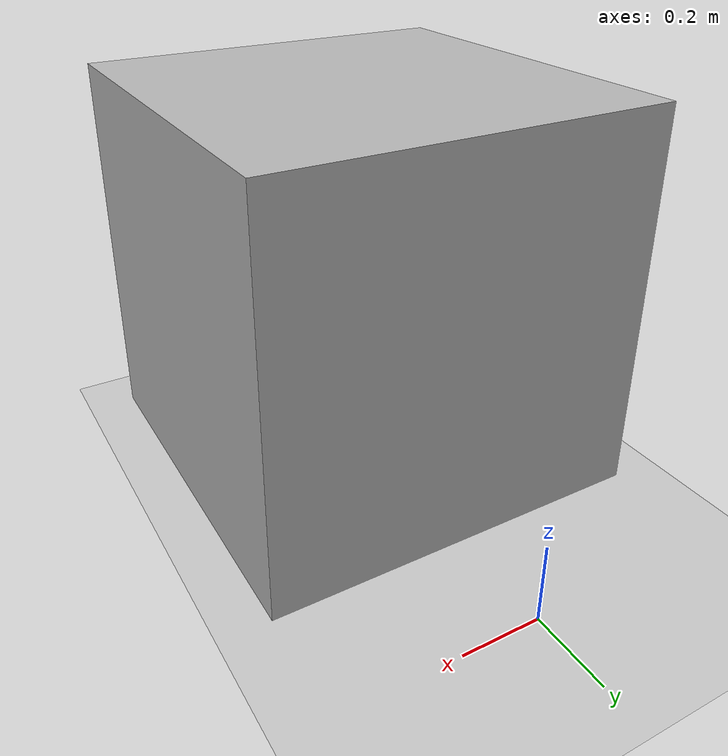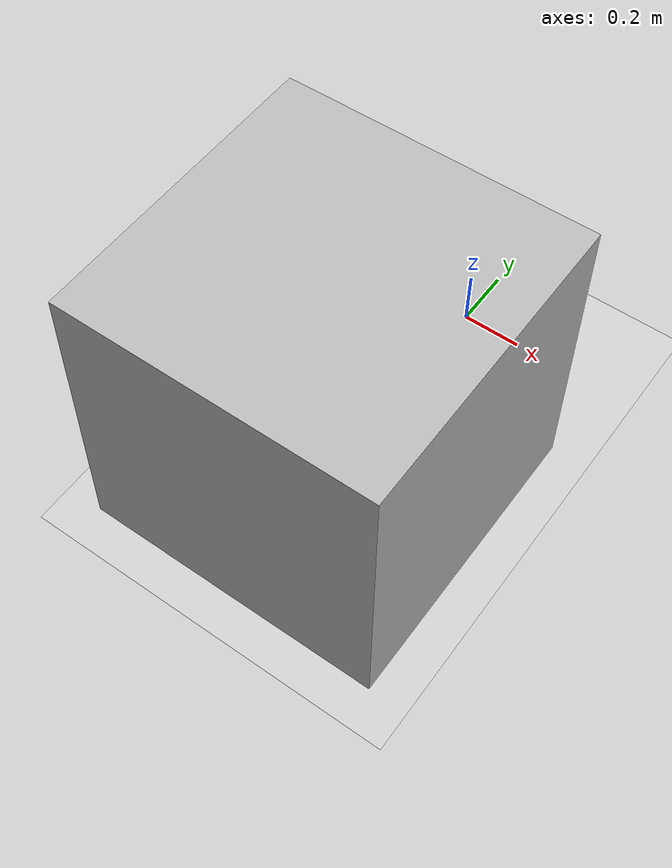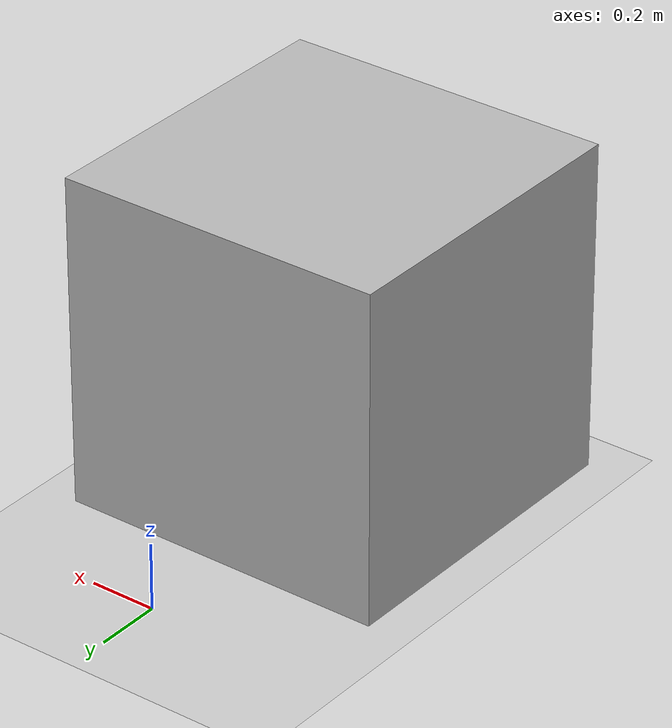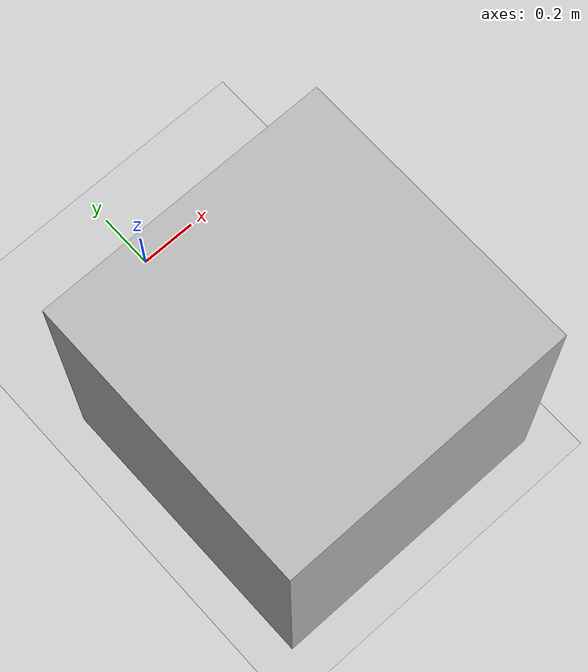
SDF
<?xml version="1.0"?>
<sdf version="1.6">
  <world name="default">
    <include>
      <uri>model://ground_plane</uri>
    </include>

     <include>
      <uri>model://sun</uri>
    </include>

    <model name="box">
      <link name="link">
        <pose>0 -0.78 0.5 0 0 0</pose>
        <collision name="box_collision">
          <geometry>
            <box>
              <size>1 1 1</size>
            </box>
          </geometry>
        </collision>
        <visual name="visual">
          <geometry>
            <box>
              <size>1 1 1</size>
            </box>
          </geometry>
        </visual>
        <sensor name='my_contact' type='contact'>
          <contact>
            <collision>box_collision</collision>
          </contact>
        </sensor>
      </link>
    </model>

  </world>
</sdf>
